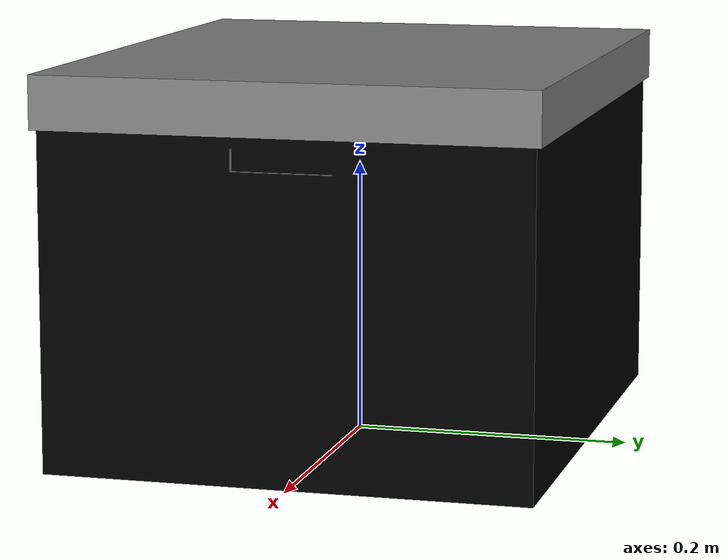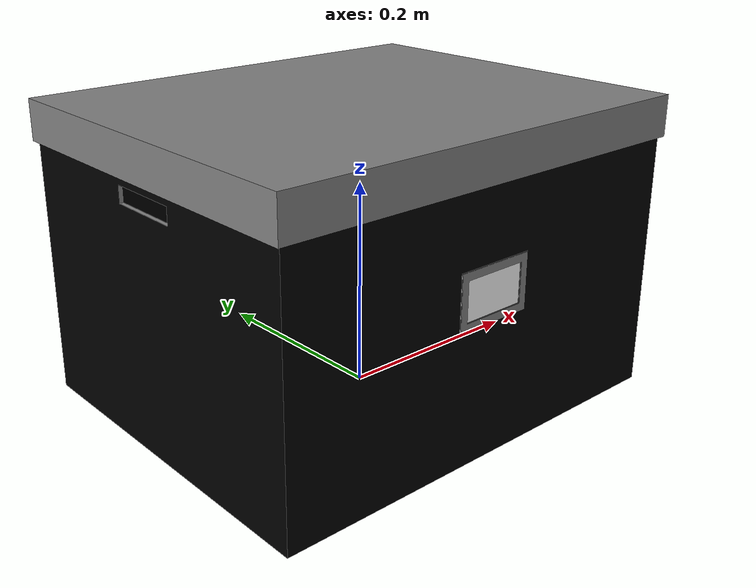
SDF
<?xml version='1.0'?>
<sdf version='1.6'>
  <model name='file_box_1'>
    <link name='link_0'>
       <visual name='visual'>
        <pose frame=''>0 0 0 0 -0 0</pose>
        <geometry>
          <mesh>
            <uri>model://file_box_1/meshes/meshes/body.dae</uri>
            <scale>1 1 1</scale>
          </mesh>
        </geometry>
        <material>
          <script>
            <uri>model://file_box_1/materials/scripts</uri>
            <uri>model://file_box_1/materials/textures</uri>
            <name>file_box</name>
          </script>
        </material>
        <cast_shadows>1</cast_shadows>
        <transparency>0</transparency>
      </visual>
      <collision name='collision'>
        <laser_retro>0</laser_retro>
        <max_contacts>10</max_contacts>
        <pose frame=''>0 0 0 0 -0 0</pose>
        <geometry>
          <mesh>
            <uri>model://file_box_1/meshes/meshes/body.dae</uri>
            <scale>1 1 1</scale>
          </mesh>
        </geometry>
      </collision>
    </link>
    <link name='link_1'>
      <visual name='visual'>
        <pose frame=''>0 0 0 0 -0 0</pose>
        <geometry>
          <mesh>
            <uri>model://file_box_1/meshes/meshes/tag.dae</uri>
            <scale>1 1 1</scale>
          </mesh>
        </geometry>
        <material>
          <lighting>1</lighting>
           <ambient>1 1 1 1</ambient>
          <diffuse>1 1 1 1</diffuse>
          <specular>0.01 0.01 0.01 1</specular>
          <emissive>0 0 0 1</emissive>
        </material>
        <cast_shadows>1</cast_shadows>
        <transparency>0</transparency>
      </visual>
      <collision name='collision'>
        <laser_retro>0</laser_retro>
        <max_contacts>10</max_contacts>
        <pose frame=''>0 0 0 0 -0 0</pose>
        <geometry>
          <mesh>
            <uri>model://file_box_1/meshes/meshes/tag.dae</uri>
            <scale>1 1 1</scale>
          </mesh>
        </geometry>
      </collision>
    </link>
    <static>1</static>
    <allow_auto_disable>1</allow_auto_disable>
  </model>
</sdf>
